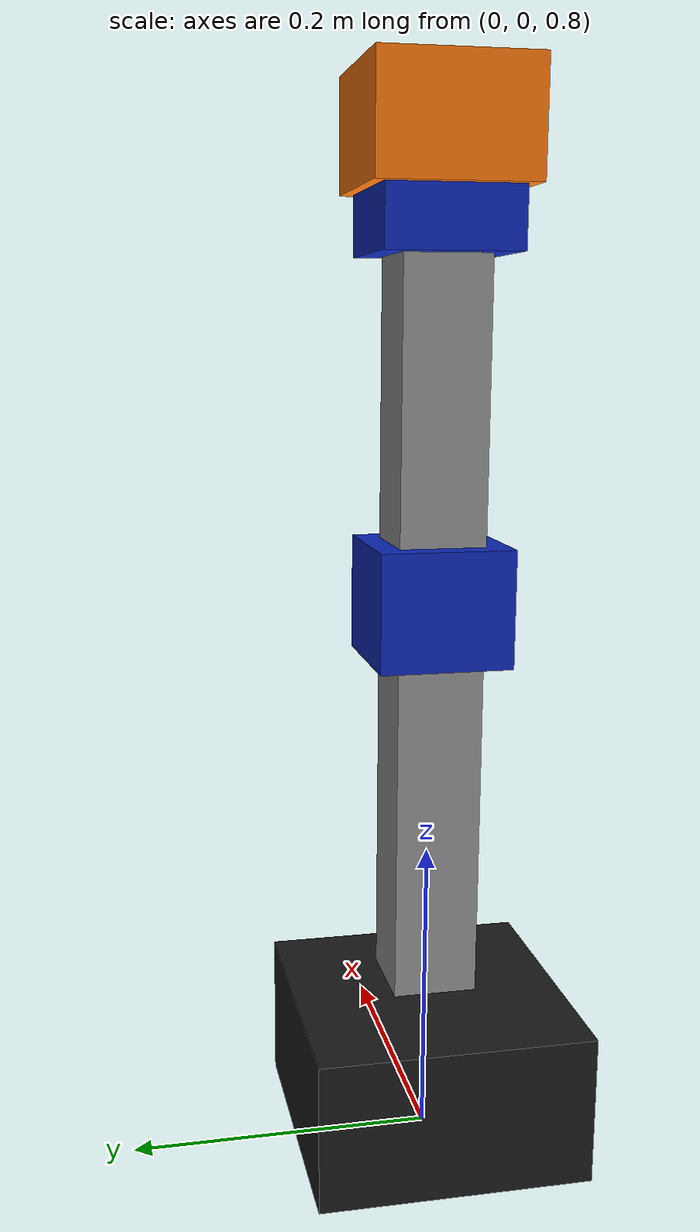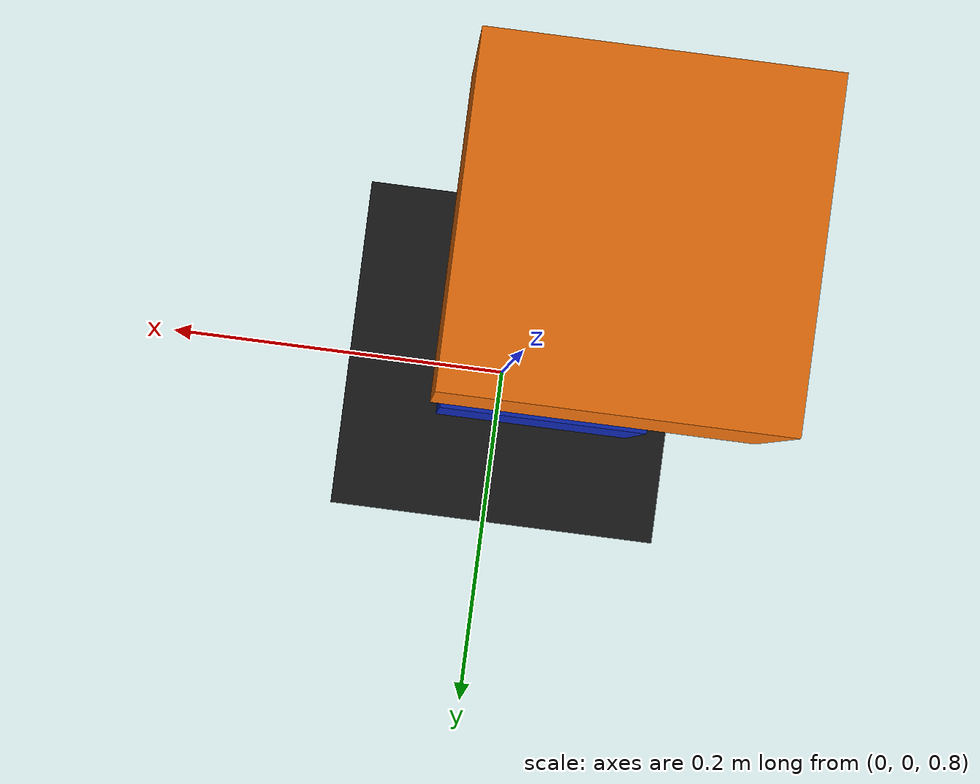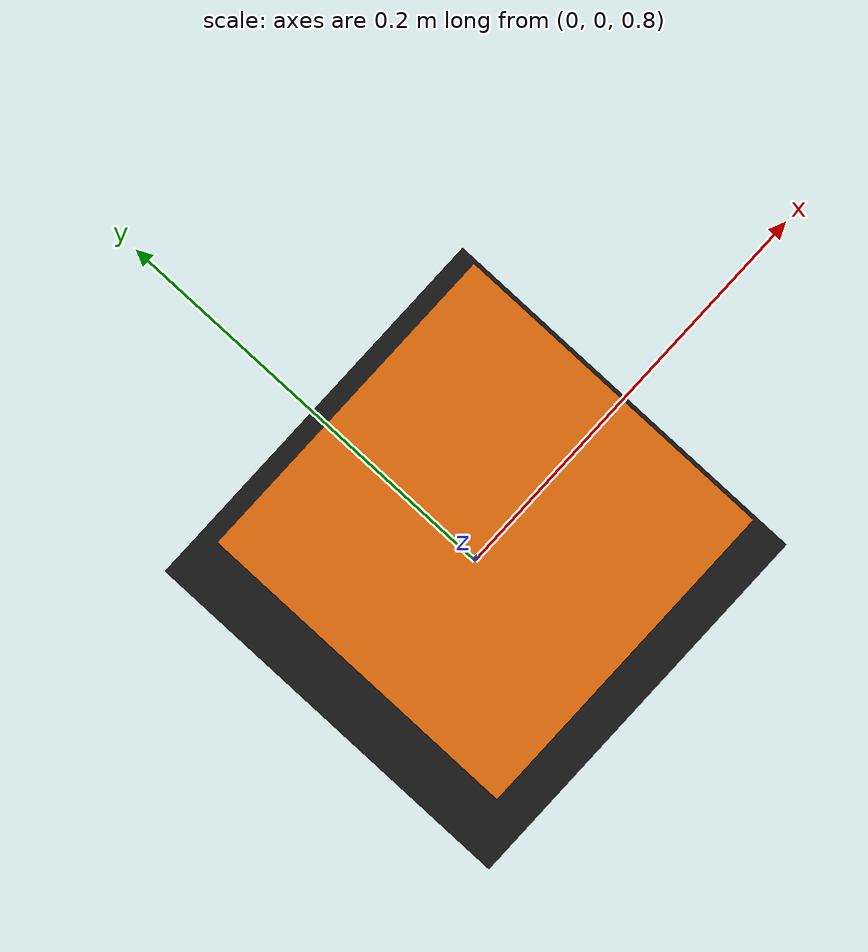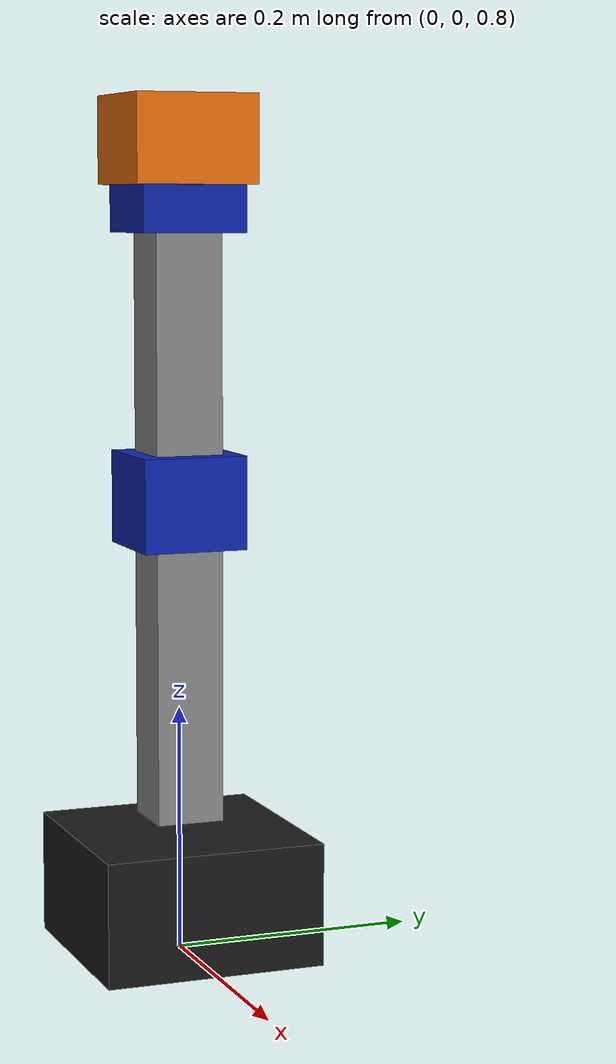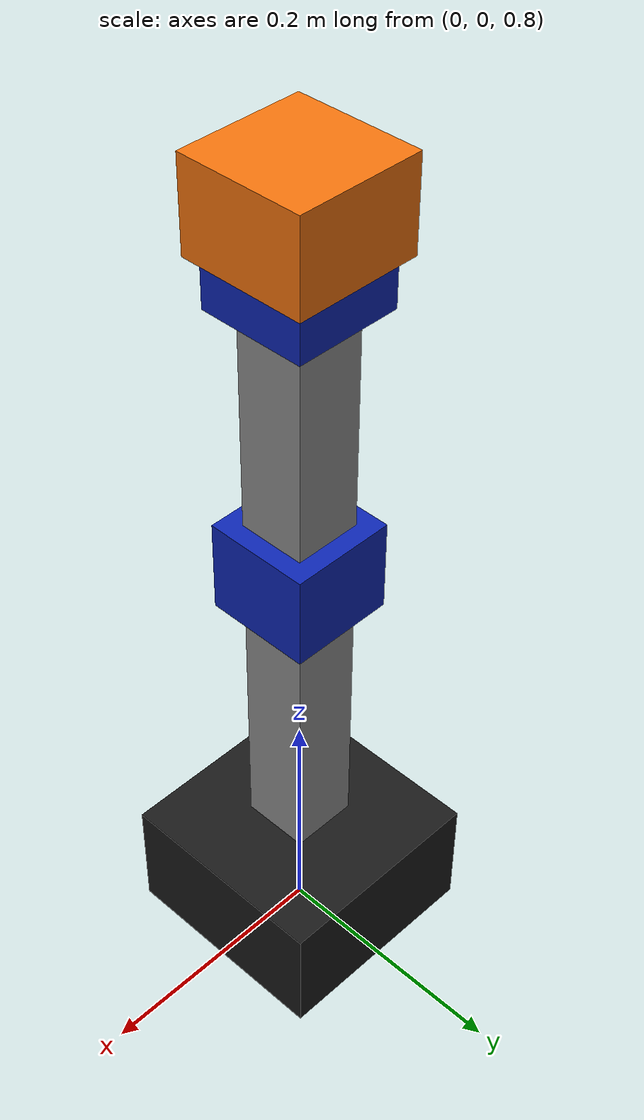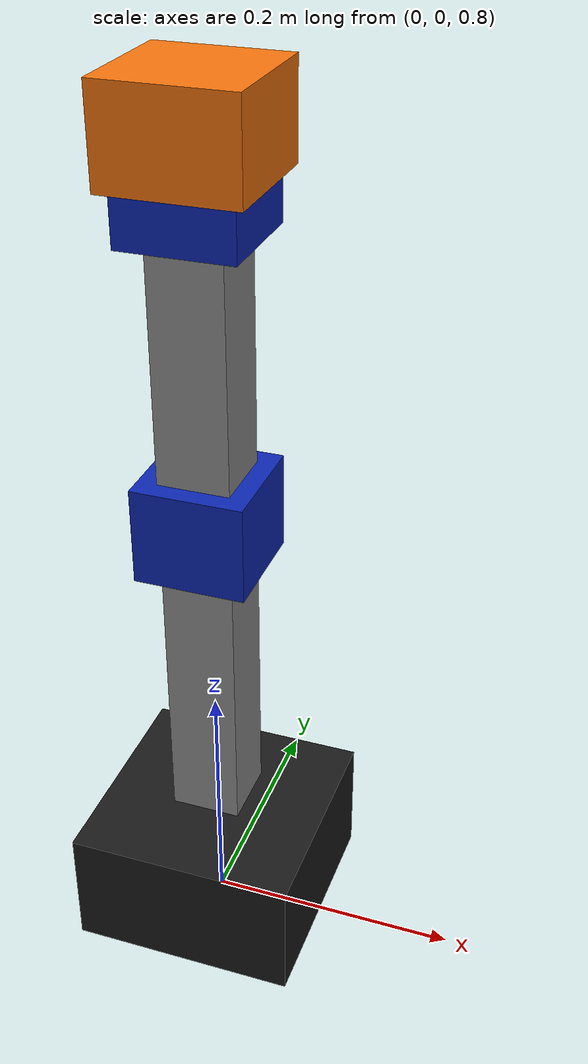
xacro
<?xml version="1.0"?>
<robot name="rav_physics_arm" xmlns:xacro="http://www.ros.org/wiki/xacro">

  <xacro:arg name="payload" default="0.0"/>

  <xacro:property name="l1" value="0.260"/>
  <xacro:property name="l2" value="0.250"/>
  <xacro:property name="thickness" value="0.055"/>

  <xacro:property name="m_link1" value="1.00824"/>
  <xacro:property name="com_link1" value="0.130913"/>

  <xacro:property name="m_link2" value="1.21650"/>
  <xacro:property name="com_link2" value="0.121429"/>

  <xacro:property name="m_distal" value="${0.800 + $(arg payload)}"/>

  <xacro:property name="home_shoulder" value="-0.4200"/>
  <xacro:property name="home_elbow" value="1.1800"/>
  <xacro:property name="home_wrist" value="0.8240"/>

  <material name="base_dark">
    <color rgba="0.10 0.10 0.10 1.0"/>
  </material>
  <material name="link_grey">
    <color rgba="0.55 0.55 0.55 1.0"/>
  </material>
  <material name="motor_blue">
    <color rgba="0.05 0.15 0.70 1.0"/>
  </material>
  <material name="payload_orange">
    <color rgba="0.95 0.45 0.05 1.0"/>
  </material>

  <xacro:macro name="box_inertia" params="mass x y z">
    <inertia
      ixx="${mass / 12.0 * (y*y + z*z)}" ixy="0.0" ixz="0.0"
      iyy="${mass / 12.0 * (x*x + z*z)}" iyz="0.0"
      izz="${mass / 12.0 * (x*x + y*y)}"/>
  </xacro:macro>

  <link name="world"/>

  <link name="base_link">
    <visual>
      <origin xyz="0 0 0" rpy="0 0 0"/>
      <geometry>
        <box size="0.18 0.18 0.10"/>
      </geometry>
      <material name="base_dark"/>
    </visual>
    <collision>
      <origin xyz="0 0 0" rpy="0 0 0"/>
      <geometry>
        <box size="0.18 0.18 0.10"/>
      </geometry>
    </collision>
    <inertial>
      <origin xyz="0 0 0" rpy="0 0 0"/>
      <mass value="10.0"/>
      <xacro:box_inertia mass="10.0" x="0.18" y="0.18" z="0.10"/>
    </inertial>
  </link>

  <joint name="world_to_base" type="fixed">
    <parent link="world"/>
    <child link="base_link"/>
    <origin xyz="0 0 0.85" rpy="0 0 0"/>
  </joint>

  <!-- Link 1 points along +Z at zero. Shoulder rotation axis is X. -->
  <link name="link1">
    <visual>
      <origin xyz="0 0 ${l1/2.0}" rpy="0 0 0"/>
      <geometry>
        <box size="${thickness} ${thickness} ${l1}"/>
      </geometry>
      <material name="link_grey"/>
    </visual>
    <visual>
      <origin xyz="0 0 ${l1}" rpy="0 0 0"/>
      <geometry>
        <box size="0.085 0.085 0.075"/>
      </geometry>
      <material name="motor_blue"/>
    </visual>
    <collision>
      <origin xyz="0 0 ${l1/2.0}" rpy="0 0 0"/>
      <geometry>
        <box size="${thickness} ${thickness} ${l1}"/>
      </geometry>
    </collision>
    <inertial>
      <origin xyz="0 0 ${com_link1}" rpy="0 0 0"/>
      <mass value="${m_link1}"/>
      <xacro:box_inertia mass="${m_link1}" x="${thickness}" y="${thickness}" z="${l1}"/>
    </inertial>
  </link>

  <joint name="shoulder_joint" type="revolute">
    <parent link="base_link"/>
    <child link="link1"/>
    <origin xyz="0 0 0.06" rpy="0 0 0"/>
    <axis xyz="1 0 0"/>
    <limit effort="10.0" lower="${-pi/2.0}" upper="${pi/2.0}" velocity="0.50"/>
    <dynamics damping="0.20" friction="0.0"/>
  </joint>

  <!-- Link 2 also points along +Z in its own frame at zero. -->
  <link name="link2">
    <visual>
      <origin xyz="0 0 ${l2/2.0}" rpy="0 0 0"/>
      <geometry>
        <box size="${thickness} ${thickness} ${l2}"/>
      </geometry>
      <material name="link_grey"/>
    </visual>
    <visual>
      <origin xyz="0 0 ${l2}" rpy="0 0 0"/>
      <geometry>
        <box size="0.085 0.085 0.075"/>
      </geometry>
      <material name="motor_blue"/>
    </visual>
    <collision>
      <origin xyz="0 0 ${l2/2.0}" rpy="0 0 0"/>
      <geometry>
        <box size="${thickness} ${thickness} ${l2}"/>
      </geometry>
    </collision>
    <inertial>
      <origin xyz="0 0 ${com_link2}" rpy="0 0 0"/>
      <mass value="${m_link2}"/>
      <xacro:box_inertia mass="${m_link2}" x="${thickness}" y="${thickness}" z="${l2}"/>
    </inertial>
  </link>

  <joint name="elbow_joint" type="revolute">
    <parent link="link1"/>
    <child link="link2"/>
    <origin xyz="0 0 ${l1}" rpy="0 0 0"/>
    <axis xyz="1 0 0"/>
    <limit effort="10.0" lower="${-pi/2.0}" upper="${pi/2.0}" velocity="0.50"/>
    <dynamics damping="0.20" friction="0.0"/>
  </joint>

  <link name="wrist_payload_link">
    <visual>
      <origin xyz="0 0 0.035" rpy="0 0 0"/>
      <geometry>
        <box size="0.10 0.10 0.07"/>
      </geometry>
      <material name="payload_orange"/>
    </visual>
    <collision>
      <origin xyz="0 0 0.035" rpy="0 0 0"/>
      <geometry>
        <box size="0.10 0.10 0.07"/>
      </geometry>
    </collision>
    <inertial>
      <origin xyz="0 0 0.035" rpy="0 0 0"/>
      <mass value="${m_distal}"/>
      <xacro:box_inertia mass="${m_distal}" x="0.10" y="0.10" z="0.07"/>
    </inertial>
  </link>

  <joint name="wrist_joint" type="revolute">
    <parent link="link2"/>
    <child link="wrist_payload_link"/>
    <origin xyz="0 0 ${l2}" rpy="0 0 0"/>
    <axis xyz="1 0 0"/>
    <limit effort="10.0" lower="${-pi/2.0}" upper="${pi/2.0}" velocity="0.50"/>
    <dynamics damping="0.15" friction="0.0"/>
  </joint>

  <link name="tcp_link"/>
  <joint name="tcp_fixed_joint" type="fixed">
    <parent link="wrist_payload_link"/>
    <child link="tcp_link"/>
    <origin xyz="0 0 0.07" rpy="0 0 0"/>
  </joint>

  <ros2_control name="GazeboSimSystem" type="system">
    <hardware>
      <plugin>gz_ros2_control/GazeboSimSystem</plugin>
    </hardware>

    <joint name="shoulder_joint">
      <command_interface name="effort">
        <param name="min">-10.0</param>
        <param name="max">10.0</param>
      </command_interface>
      <state_interface name="position">
        <param name="initial_value">${home_shoulder}</param>
      </state_interface>
      <state_interface name="velocity"/>
      <state_interface name="effort"/>
    </joint>

    <joint name="elbow_joint">
      <command_interface name="effort">
        <param name="min">-10.0</param>
        <param name="max">10.0</param>
      </command_interface>
      <state_interface name="position">
        <param name="initial_value">${home_elbow}</param>
      </state_interface>
      <state_interface name="velocity"/>
      <state_interface name="effort"/>
    </joint>

    <joint name="wrist_joint">
      <command_interface name="effort">
        <param name="min">-10.0</param>
        <param name="max">10.0</param>
      </command_interface>
      <state_interface name="position">
        <param name="initial_value">${home_wrist}</param>
      </state_interface>
      <state_interface name="velocity"/>
      <state_interface name="effort"/>
    </joint>
  </ros2_control>

  <gazebo>
    <plugin filename="gz_ros2_control-system" name="gz_ros2_control::GazeboSimROS2ControlPlugin">
      <parameters>$(find rav_physics_sim)/config/rav_effort_controllers.yaml</parameters>
    </plugin>
  </gazebo>

</robot>
